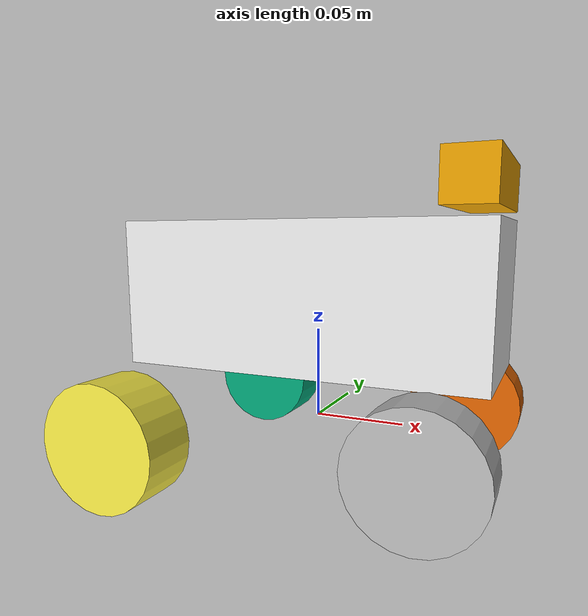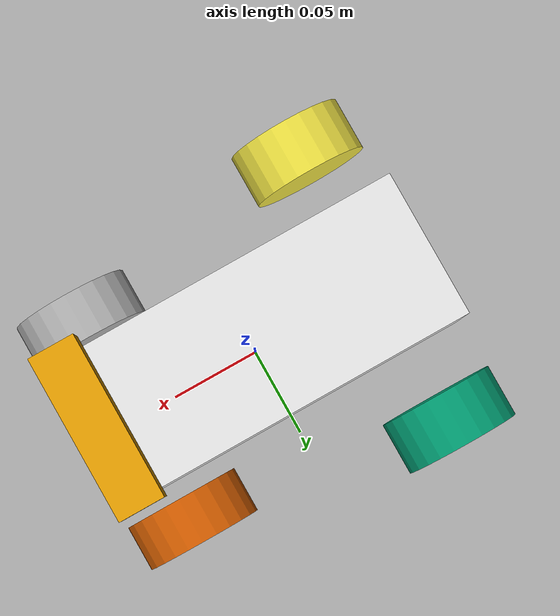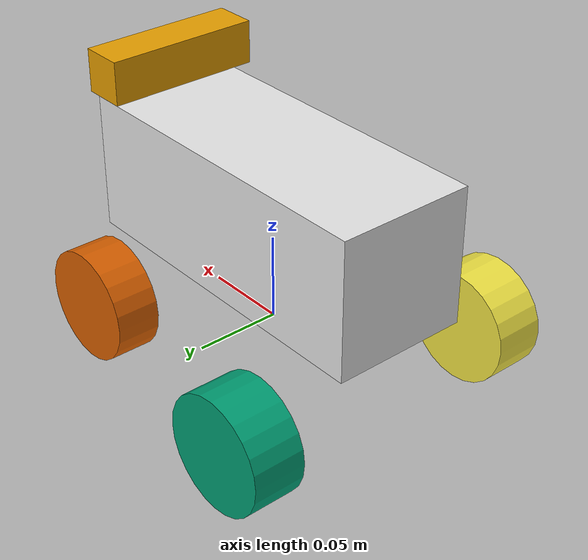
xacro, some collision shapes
<?xml version="1.0"?>
<robot name="Margarete" xmlns:xacro="http://www.ros.org/wiki/xacro">

  <!-- Parâmetros Reais (Fusion 360 -> ROS REP-103)                   -->
  <!-- Entre-eixos (L) e Bitolas (W) -->
  <xacro:property name="wheel_base" value="0.148245"/>        <!-- 148.245 mm entre-eixos real centro a centro -->
  <xacro:property name="track_front" value="0.1245"/>         <!-- 124.5 mm bitola dianteira -->
  <xacro:property name="track_rear" value="0.1680"/>          <!-- 168.0 mm bitola traseira -->

  <!-- Rodas -->
  <xacro:property name="wheel_radius" value="0.033"/>         <!-- Raio: 33 mm -->
  <xacro:property name="wheel_width_rear" value="0.0301"/>    <!-- Largura traseira: 30.1 mm -->
  <xacro:property name="wheel_width_front" value="0.0260"/>   <!-- Largura dianteira: 26.0 mm -->
  <xacro:property name="wheel_mass" value="0.08"/>            <!-- ~80 g por roda -->

  <!-- Esterço (limite de 30 graus para o modelo de bicicleta Ackermann) -->
  <xacro:property name="steer_limit" value="0.5236"/>         <!-- 30 deg em radianos -->
  <!-- Limite mecânico das juntas das mangas (margem para a roda interna Ackermann que esterça mais que a média) -->
  <xacro:property name="joint_steer_limit" value="0.65"/>     <!-- ~37.2 deg em radianos -->

  <!-- Inércias aproximadas das rodas (cilindros de 33 mm) -->
  <xacro:property name="wheel_iyy" value="${0.5 * wheel_mass * wheel_radius * wheel_radius}"/>
  <xacro:property name="wheel_ixx_izz" value="${(1.0/12.0) * wheel_mass * (3 * wheel_radius * wheel_radius + wheel_width_rear * wheel_width_rear)}"/>

  <!-- Dummy link para compatibilidade com KDL -->
  <link name="dummy_link"/>
  <joint name="dummy_joint" type="fixed">
    <parent link="dummy_link"/>
    <child link="base_link"/>
  </joint>

  <!-- Chassi Principal                                               -->
  <link name="base_link">
    <visual>
      <!-- Rotação de -90 deg (-pi/2) em Z para alinhar com o eixo X do ROS -->
      <!-- Ajuste os valores xyz para transladar a malha até o centro das rodas -->
      <origin xyz="-0.0775 0.115 -0.171" rpy="0 0 ${-pi/2}"/>
      <geometry>
        <mesh filename="package://robot_description/meshes/Chassi.stl" scale="0.001 0.001 0.001"/>
      </geometry>
      <material name="white">
        <color rgba="0.9 0.9 0.9 1.0"/>
      </material>
    </visual>

    <!-- Caixa de colisão baseada na Bounding Box: 315 mm (X) x 201 mm (Y) x 177 mm (Z) -->
    <!-- Z do centro = vão livre (20 mm) - raio da roda (33 mm) + metade da altura (88.5 mm) = 75.5 mm -->
    <collision name="base_link_collision">
      <origin xyz="0 0 0.07" rpy="0 0 0"/>
      <geometry>
        <box size="0.20 0.08 0.08"/>
      </geometry>
    </collision>

    <inertial>
      <origin xyz="0 0 0.05" rpy="0 0 0"/>
      <mass value="2.78"/>
      <inertia ixx="0.01853" ixy="0.0" ixz="0.0"
               iyy="0.03373" iyz="0.0"
               izz="0.03607"/>
    </inertial>
  </link>

  <!-- Eixo Traseiro (Tração)                                         -->
  <!-- Roda Traseira Esquerda -->
  <link name="roda_traseira_esquerda">
    <inertial>
      <mass value="${wheel_mass}"/>
      <inertia ixx="${wheel_ixx_izz}" ixy="0.0" ixz="0.0"
               iyy="${wheel_iyy}" iyz="0.0"
               izz="${wheel_ixx_izz}"/>
    </inertial>
    <collision>
      <origin xyz="0 0 0" rpy="${pi/2} 0 0"/>
      <geometry>
        <cylinder radius="${wheel_radius}" length="${wheel_width_rear}"/>
      </geometry>
    </collision>
    <visual>
      <origin xyz="0 0 0" rpy="${pi/2} 0 0"/>
      <geometry>
        <cylinder radius="${wheel_radius}" length="${wheel_width_rear}"/>
      </geometry>
    </visual>
  </link>
  <joint name="junta_roda_traseira_esquerda" type="continuous">
    <parent link="base_link"/>
    <child link="roda_traseira_esquerda"/>
    <axis xyz="0 1 0"/>
    <origin xyz="-${wheel_base/2} ${track_rear/2} 0" rpy="0 0 0"/>
  </joint>

  <!-- Roda Traseira Direita -->
  <link name="roda_traseira_direita">
    <inertial>
      <mass value="${wheel_mass}"/>
      <inertia ixx="${wheel_ixx_izz}" ixy="0.0" ixz="0.0"
               iyy="${wheel_iyy}" iyz="0.0"
               izz="${wheel_ixx_izz}"/>
    </inertial>
    <collision>
      <origin xyz="0 0 0" rpy="${pi/2} 0 0"/>
      <geometry>
        <cylinder radius="${wheel_radius}" length="${wheel_width_rear}"/>
      </geometry>
    </collision>
    <visual>
      <origin xyz="0 0 0" rpy="${pi/2} 0 0"/>
      <geometry>
        <cylinder radius="${wheel_radius}" length="${wheel_width_rear}"/>
      </geometry>
    </visual>
  </link>
  <joint name="junta_roda_traseira_direita" type="continuous">
    <parent link="base_link"/>
    <child link="roda_traseira_direita"/>
    <axis xyz="0 1 0"/>
    <origin xyz="-${wheel_base/2} -${track_rear/2} 0" rpy="0 0 0"/>
  </joint>

  <!-- Eixo Dianteiro (Direção Ackermann)                            -->
  <!-- Manga de Eixo Esquerda -->
  <link name="manga_eixo_dianteira_esquerda">
    <inertial>
      <mass value="0.05"/>
      <inertia ixx="1e-5" ixy="0.0" ixz="0.0" iyy="1e-5" iyz="0.0" izz="1e-5"/>
    </inertial>
  </link>
  <joint name="junta_direcao_dianteira_esquerda" type="revolute">
    <parent link="base_link"/>
    <child link="manga_eixo_dianteira_esquerda"/>
    <axis xyz="0 0 1"/>
    <origin xyz="${wheel_base/2} ${track_front/2} 0" rpy="0 0 0"/>
    <limit lower="-${joint_steer_limit}" upper="${joint_steer_limit}" effort="5.0" velocity="2.0"/>
  </joint>

  <!-- Roda Dianteira Esquerda -->
  <link name="roda_dianteira_esquerda">
    <inertial>
      <mass value="${wheel_mass}"/>
      <inertia ixx="${wheel_ixx_izz}" ixy="0.0" ixz="0.0"
               iyy="${wheel_iyy}" iyz="0.0"
               izz="${wheel_ixx_izz}"/>
    </inertial>
    <collision>
      <origin xyz="0 0 0" rpy="${pi/2} 0 0"/>
      <geometry>
        <cylinder radius="${wheel_radius}" length="${wheel_width_front}"/>
      </geometry>
    </collision>
    <visual>
      <origin xyz="0 0 0" rpy="${pi/2} 0 0"/>
      <geometry>
        <cylinder radius="${wheel_radius}" length="${wheel_width_front}"/>
      </geometry>
    </visual>
  </link>
  <joint name="junta_roda_dianteira_esquerda" type="continuous">
    <parent link="manga_eixo_dianteira_esquerda"/>
    <child link="roda_dianteira_esquerda"/>
    <axis xyz="0 1 0"/>
    <origin xyz="0 0 0" rpy="0 0 0"/>
  </joint>

  <!-- Manga de Eixo Direita -->
  <link name="manga_eixo_dianteira_direita">
    <inertial>
      <mass value="0.05"/>
      <inertia ixx="1e-5" ixy="0.0" ixz="0.0" iyy="1e-5" iyz="0.0" izz="1e-5"/>
    </inertial>
  </link>
  <joint name="junta_direcao_dianteira_direita" type="revolute">
    <parent link="base_link"/>
    <child link="manga_eixo_dianteira_direita"/>
    <axis xyz="0 0 1"/>
    <origin xyz="${wheel_base/2} -${track_front/2} 0" rpy="0 0 0"/>
    <limit lower="-${joint_steer_limit}" upper="${joint_steer_limit}" effort="5.0" velocity="2.0"/>
  </joint>

  <!-- Roda Dianteira Direita -->
  <link name="roda_dianteira_direita">
    <inertial>
      <mass value="${wheel_mass}"/>
      <inertia ixx="${wheel_ixx_izz}" ixy="0.0" ixz="0.0"
               iyy="${wheel_iyy}" iyz="0.0"
               izz="${wheel_ixx_izz}"/>
    </inertial>
    <collision>
      <origin xyz="0 0 0" rpy="${pi/2} 0 0"/>
      <geometry>
        <cylinder radius="${wheel_radius}" length="${wheel_width_front}"/>
      </geometry>
    </collision>
    <visual>
      <origin xyz="0 0 0" rpy="${pi/2} 0 0"/>
      <geometry>
        <cylinder radius="${wheel_radius}" length="${wheel_width_front}"/>
      </geometry>
    </visual>
  </link>
  <joint name="junta_roda_dianteira_direita" type="continuous">
    <parent link="manga_eixo_dianteira_direita"/>
    <child link="roda_dianteira_direita"/>
    <axis xyz="0 1 0"/>
    <origin xyz="0 0 0" rpy="0 0 0"/>
  </joint>

  <!-- Intel RealSense D435i : Posição Real Medida no CAD            -->
  <xacro:property name="cam_x" value="0.087"/>   <!-- Y CAD: +75.3 mm à frente -->
  <xacro:property name="cam_y" value="0.0"/>      <!-- X CAD: centralizada lateralmente -->
  <xacro:property name="cam_z" value="0.127"/>    <!-- 127.0 mm acima do centro dos eixos (160 mm do chão considerando raio 33 mm) -->

  <xacro:property name="imu_off_x" value="-0.01174"/>
  <xacro:property name="imu_off_y" value="-0.00552"/>
  <xacro:property name="imu_off_z" value="0.0051"/>

  <link name="camera_link">
    <visual>
      <geometry>
        <box size="0.025 0.090 0.025"/>
      </geometry>
    </visual>
    <collision>
      <geometry>
        <box size="0.025 0.090 0.025"/>
      </geometry>
    </collision>
    <inertial>
      <mass value="0.072"/>
      <inertia ixx="5.24e-5" ixy="0.0" ixz="0.0" iyy="7.5e-6" iyz="0.0" izz="5.24e-5"/>
    </inertial>
  </link>
  <joint name="camera_joint" type="fixed">
    <parent link="base_link"/>
    <child link="camera_link"/>
    <origin xyz="${cam_x} ${cam_y} ${cam_z}" rpy="0 0 0"/>
  </joint>

  <link name="camera_imu_frame"/>
  <joint name="camera_imu_joint" type="fixed">
    <parent link="camera_link"/>
    <child link="camera_imu_frame"/>
    <origin xyz="${imu_off_x} ${imu_off_y} ${imu_off_z}" rpy="0 0 0"/>
  </joint>

  <link name="camera_imu_optical_frame"/>
  <joint name="camera_imu_optical_joint" type="fixed">
    <parent link="camera_link"/>
    <child link="camera_imu_optical_frame"/>
    <origin xyz="0 0 0" rpy="${-pi/2} 0 ${-pi/2}"/>
  </joint>

  <!-- Sensor IMU do Gazebo Sim -->
  <gazebo reference="camera_imu_frame">
    <sensor name="realsense_imu" type="imu">
      <always_on>true</always_on>
      <update_rate>200</update_rate>
      <visualize>false</visualize>
      <topic>/Margarete/realsense/imu</topic>
      <gz_frame_id>camera_imu_frame</gz_frame_id>
      <imu>
        <angular_velocity>
          <x><noise type="gaussian"><mean>0.0</mean><stddev>2.4e-3</stddev><bias_mean>5e-5</bias_mean><bias_stddev>1e-5</bias_stddev></noise></x>
          <y><noise type="gaussian"><mean>0.0</mean><stddev>2.4e-3</stddev><bias_mean>5e-5</bias_mean><bias_stddev>1e-5</bias_stddev></noise></y>
          <z><noise type="gaussian"><mean>0.0</mean><stddev>2.4e-3</stddev><bias_mean>5e-5</bias_mean><bias_stddev>1e-5</bias_stddev></noise></z>
        </angular_velocity>
        <linear_acceleration>
          <x><noise type="gaussian"><mean>0.0</mean><stddev>1.5e-2</stddev><bias_mean>1e-3</bias_mean><bias_stddev>1e-4</bias_stddev></noise></x>
          <y><noise type="gaussian"><mean>0.0</mean><stddev>1.5e-2</stddev><bias_mean>1e-3</bias_mean><bias_stddev>1e-4</bias_stddev></noise></y>
          <z><noise type="gaussian"><mean>0.0</mean><stddev>1.5e-2</stddev><bias_mean>1e-3</bias_mean><bias_stddev>1e-4</bias_stddev></noise></z>
        </linear_acceleration>
      </imu>
    </sensor>
  </gazebo>

  <!-- Plugins do Gazebo Sim                                          -->
  <gazebo>
    <plugin filename="gz-sim-imu-system" name="gz::sim::systems::Imu"/>

    <!-- Plugin Ackermann com Geometria Real -->
    <plugin filename="gz-sim-ackermann-steering-system" name="gz::sim::systems::AckermannSteering">
      <left_joint>junta_roda_traseira_esquerda</left_joint>
      <right_joint>junta_roda_traseira_direita</right_joint>
      <left_steering_joint>junta_direcao_dianteira_esquerda</left_steering_joint>
      <right_steering_joint>junta_direcao_dianteira_direita</right_steering_joint>

      <wheel_base>${wheel_base}</wheel_base>
      <wheel_separation>${track_rear}</wheel_separation>
      <kingpin_width>${track_front}</kingpin_width>
      <wheel_radius>${wheel_radius}</wheel_radius>
      <steering_limit>${steer_limit}</steering_limit>
      <steer_p_gain>10.0</steer_p_gain>
      <odom_publish_frequency>50</odom_publish_frequency>

      <topic>/Margarete/cmd_vel</topic>
      <odom_topic>/Margarete/odom</odom_topic>
      <frame_id>odom</frame_id>
      <child_frame_id>base_link</child_frame_id>
    </plugin>

    <plugin filename="gz-sim-joint-state-publisher-system" name="gz::sim::systems::JointStatePublisher">
      <topic>/Margarete/joint_states</topic>
    </plugin>
  </gazebo>

  <!-- Fricção dos Pneus em Terreno Irregular -->
  <gazebo reference="roda_traseira_esquerda">
    <mu1>1.5</mu1>
    <mu2>1.5</mu2>
  </gazebo>
  <gazebo reference="roda_traseira_direita">
    <mu1>1.5</mu1>
    <mu2>1.5</mu2>
  </gazebo>
  <gazebo reference="roda_dianteira_esquerda">
    <mu1>1.5</mu1>
    <mu2>1.5</mu2>
  </gazebo>
  <gazebo reference="roda_dianteira_direita">
    <mu1>1.5</mu1>
    <mu2>1.5</mu2>
  </gazebo>

</robot>
